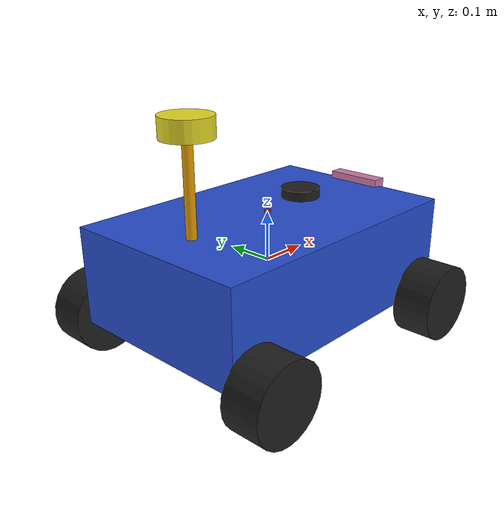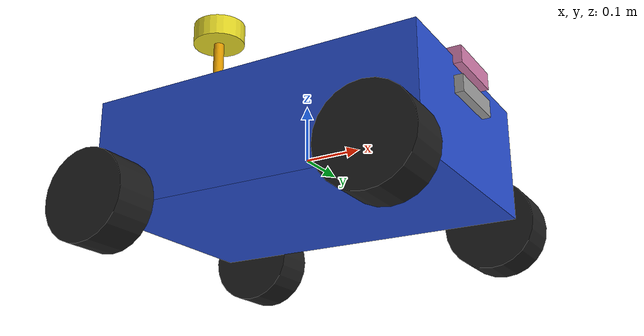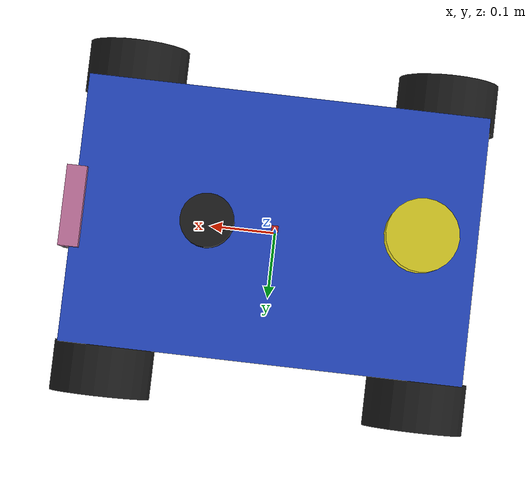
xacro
<?xml version = "1.0"?>
<robot xmlns:xacro="http://www.ros.org/wiki.xacro" name = "robot" >

<xacro:include filename="lidar.xacro"/>
<xacro:include filename="stereo.xacro"/>
<xacro:include filename="gps.xacro"/>
<xacro:include filename="imu.xacro"/>
<xacro:include filename="cam.xacro"/>

    <link name = "base_link">
        <visual>
            <geometry>
                <box size = "0.6 0.4 0.2" />
            </geometry>
            <origin xyz = "0 0 0" rpy = "0 0 0" />
        </visual>

        <collision>
            <geometry>
                <box size = "0.6 0.4 0.2" />
            </geometry>
            <origin xyz = "0 0 0" rpy = "0 0 0" />
        </collision>
      <inertial>
        <mass value="20"/>
        <origin xyz="0 0 0" rpy="0 0 0"/>
        <inertia ixx="0.333" ixy="0" ixz="0" iyy="0.666" iyz="0" izz="0.866"/>
      </inertial>
    </link>

    <link name="left_wheel_back_link">
        <visual>
            <origin xyz="0 0 0" rpy="1.5708 0 0"/>
            <geometry>
                <cylinder radius="0.08" length="0.08"/>
            </geometry>
        </visual>
        <collision>
            <origin xyz="0 0 0" rpy="1.5708 0 0"/>
            <geometry>
                <cylinder radius="0.08" length="0.08"/>
            </geometry>
        </collision>
        <inertial>
            <mass value="2"/>
            <inertia ixx="0.0042" ixy="0" ixz="0" iyy="0.0042" iyz="0" izz="0.0064"/>
        </inertial>
    </link>

    <joint name="base_left_wheel_back_joint" type="continuous">
        <parent link="base_link" />
        <child link="left_wheel_back_link" />
        <origin xyz="0.25 0.24 -0.1" rpy="0 0 0"/>
        <axis xyz="0 1 0" />
    </joint>

    <link name="right_wheel_back_link">
        <visual>
            <origin xyz="0 0 0" rpy="1.5708 0 0"/>
            <geometry>
                <cylinder radius="0.08" length="0.08"/>
            </geometry>
        </visual>
        <collision>
            <origin xyz="0 0 0" rpy="1.5708 0 0"/>
            <geometry>
                <cylinder radius="0.08" length="0.08"/>
            </geometry>
        </collision>
        <inertial>
            <mass value="2"/>
            <inertia ixx="0.0042" ixy="0" ixz="0" iyy="0.0042" iyz="0" izz="0.0064"/>
        </inertial>
    </link>

    <joint name="base_right_wheel_back_joint" type="continuous">
        <parent link="base_link" />
        <child link="right_wheel_back_link" />
        <origin xyz="-0.25 -0.24 -0.1" rpy="0 0 0"/>
        <axis xyz="0 1 0" />
    </joint>

     <link name="left_wheel_front_link">
        <visual>
            <origin xyz="0 0 0" rpy="1.5708 0 0"/>
            <geometry>
                <cylinder radius="0.08" length="0.08"/>
            </geometry>
        </visual>
        <collision>
            <origin xyz="0 0 0" rpy="1.5708 0 0"/>
            <geometry>
                <cylinder radius="0.08" length="0.08"/>
            </geometry>
        </collision>
        <inertial>
            <mass value="2"/>
            <inertia ixx="0.0042" ixy="0" ixz="0" iyy="0.0042" iyz="0" izz="0.0064"/>
        </inertial>
    </link>

    <joint name="base_left_wheel_front_joint" type="continuous">
        <parent link="base_link" />
        <child link="left_wheel_front_link" />
        <origin xyz="-0.25 0.24 -0.1" rpy="0 0 0"/>
        <axis xyz="0 1 0" />
    </joint>

    <link name="right_wheel_front_link">
        <visual>
            <origin xyz="0 0 0" rpy="1.5708 0 0"/>
            <geometry>
                <cylinder radius="0.08" length="0.08"/>
            </geometry>
        </visual>
        <collision>
            <origin xyz="0 0 0" rpy="1.5708 0 0"/>
            <geometry>
                <cylinder radius="0.08" length="0.08"/>
            </geometry>
        </collision>
        <inertial>
            <mass value="2"/>
            <inertia ixx="0.0042" ixy="0" ixz="0" iyy="0.0042" iyz="0" izz="0.0064"/>
        </inertial>
    </link>

    <joint name="base_right_wheel_front_joint" type="continuous">
        <parent link="base_link" />
        <child link="right_wheel_front_link" />
        <origin xyz="0.25 -0.24 -0.1" rpy="0 0 0"/>
        <axis xyz="0 1 0" />
    </joint>

     <gazebo>
        <plugin name='diff_drive' filename='libgazebo_ros_diff_drive.so'>
    <num_wheel_pairs>2</num_wheel_pairs>

    <!-- wheels -->
    <left_joint>base_left_wheel_front_joint</left_joint>
    <right_joint>base_right_wheel_front_joint</right_joint>
    <left_joint>base_left_wheel_back_joint</left_joint>
    <right_joint>base_right_wheel_back_joint</right_joint>

    <!-- kinematics -->
    <wheel_separation>0.48</wheel_separation>
    <wheel_diameter>0.16</wheel_diameter>

    <!-- limits -->
    <max_wheel_torque>10</max_wheel_torque>
    <max_wheel_acceleration>1.0</max_wheel_acceleration>

    <!-- output -->
    <publish_odom>true</publish_odom>
    <publish_odom_tf>true</publish_odom_tf>
    <publish_wheel_tf>true</publish_wheel_tf>

    <odometry_frame>odom</odometry_frame>
    <robot_base_frame>base_link</robot_base_frame>
    <update_rate>60.0</update_rate>
</plugin>

    </gazebo>

    <gazebo>
        <plugin name="gazebo_ros_joint_state_publisher" filename="libgazebo_ros_joint_state_publisher.so">
            <update_rate>60</update_rate>
            <joint_name>base_left_wheel_front_joint</joint_name>
            <joint_name>base_left_wheel_back_joint</joint_name>
            <joint_name>base_right_wheel_front_joint</joint_name>
            <joint_name>base_right_wheel_back_joint</joint_name>

        </plugin>
    </gazebo>
       <gazebo reference="base_link">
      <material>Gazebo/Blue</material>
    </gazebo>
    <gazebo reference="left_wheel_front_link">
      <mu1>0.1</mu1>
      <mu2>0.1</mu2>
      <material>Gazebo/Black</material>
    </gazebo>
    <gazebo reference="right_wheel_back_link">
      <mu1>0.1</mu1>
      <mu2>0.1</mu2>
      <material>Gazebo/Black</material>
    </gazebo>
    <gazebo reference="left_wheel_back_link">
      <mu1>0.1</mu1>
      <mu2>0.1</mu2>
      <material>Gazebo/Black</material>
    </gazebo>
    <gazebo reference="right_wheel_front_link">
      <mu1>0.1</mu1>
      <mu2>0.1</mu2>
      <material>Gazebo/Black</material>
    </gazebo>
    <gazebo reference="laser_frame">
      <material>Gazebo/Yellow</material>
    </gazebo>
    <gazebo reference="stereo_link">
      <material>Gazebo/Grey</material>
    </gazebo>
    <gazebo reference="imu_link">
      <material>Gazebo/Red</material>
    </gazebo>
    <gazebo reference="laser_stand">
      <material>Gazebo/Grey</material>
    </gazebo>
    <gazebo reference="gps_link">
      <material>Gazebo/Black</material>
    </gazebo>

</robot>

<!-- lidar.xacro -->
<robot xmlns:xacro="http://www.ros.org/wiki/xacro" name="robot">

  <!-- Joint connecting the base_link to the lidar_stand (elevated) -->
  <joint name="stand_joint" type="fixed">
    <parent link="base_link"/>
    <child link="lidar_stand"/>
    <origin xyz="-0.2 0 0.2" rpy="0 0 0"/>
  </joint>

  <!-- Lidar stand link -->
  <link name="lidar_stand">
    <visual>
      <geometry><cylinder radius="0.01" length="0.2"/></geometry>
    </visual>
    <collision>
      <geometry><cylinder radius="0.01" length="0.2"/></geometry>
    </collision>
    <inertial>
      <mass value="0.1"/>
      <inertia ixx="0.0001" ixy="0" ixz="0" iyy="0.0001" iyz="0" izz="0.0001"/>
    </inertial>
  </link>

  <!-- Joint connecting the lidar_stand to the laser_frame -->
  <joint name="laser_joint" type="fixed">
    <parent link="lidar_stand"/>
    <child link="laser_frame"/>
    <origin xyz="0 0 0.1" rpy="0 0 0"/>
  </joint>

  <!-- Laser frame link -->
  <link name="laser_frame">
      <visual>
        <geometry>
          <cylinder radius="0.05" length="0.04"/>
        </geometry>
      </visual>
      <collision>
        <geometry>
          <cylinder radius="0.05" length="0.04"/>
        </geometry>
      </collision>
      <inertial>
        <mass value="0.1"/>
        <inertia ixx="0.00007" ixy="0" ixz="0" iyy="0.00007" iyz="0" izz="0.000125"/>
      </inertial>
    </link>

  <!-- Gazebo-specific plugin for the laser sensor -->
  <gazebo reference="laser_frame">
    <sensor name="lidar" type="ray">
      <pose>0.215 0 0.215 0 0 0</pose>
      <always_on>true</always_on>
      <visualize>false</visualize>
      <update_rate>60</update_rate>
      <ray>
        <scan>
          <horizontal>
            <samples>360</samples>
            <resolution>1.00000</resolution>
            <min_angle>0.000000</min_angle>
            <max_angle>6.280000</max_angle>
            <visualize>false</visualize>
          </horizontal>
        </scan>
        <range>
          <min>0.1</min>
          <max>20.0</max>
          <resolution>0.015000</resolution>
        </range>
        <noise>
          <type>gaussian</type>
          <mean>0.0</mean>
          <stddev>0.01</stddev>
        </noise>
      </ray>
      <plugin name="scan" filename="libgazebo_ros_ray_sensor.so">
        <ros>
          <remapping>~/out:=scan</remapping>
        </ros>
        <output_type>sensor_msgs/LaserScan</output_type>
        <frame_name>laser_frame</frame_name>
      </plugin>
    </sensor>
  </gazebo>

</robot>

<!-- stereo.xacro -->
<robot xmlns:xacro="http://www.ros.org/wiki/xacro">

  <joint name="stereo" type="fixed">
    <parent link="base_link"/>
    <child link="stereo_link"/>
      <origin xyz="0.3 0 0.05" rpy="0 0 0"/>
    </joint>

  <link name="stereo_link">
      <visual>
        <geometry>
          <box size="0.03 0.12 0.03"/>
        </geometry>
      </visual>
      <collision>
        <geometry>
          <box size="0.03 0.12 0.03"/>
        </geometry>
      </collision>
      <inertial>
        <mass value="0.1"/>
        <inertia ixx="0.0001" ixy="0" ixz="0" iyy="0.0001" iyz="0" izz="0.0001"/>
      </inertial>
    </link>
  <!-- Optical frame added here -->
  <joint name="stereo_optical_joint" type="fixed">
    <parent link="stereo_link"/>
    <child link="stereo_link_optical"/>
    <origin xyz="0 0 0" rpy="-1.5708 0 -1.5708"/>
  </joint>

  <link name="stereo_link_optical"/>

  <gazebo reference="stereo_link">
    <sensor name="camera" type="depth">
      <always_on>true</always_on>
      <update_rate>60</update_rate>
      <visualize>true</visualize>
      <pose>0 0 0 0.0 0.0 0.0</pose>
      <camera name="realsense_depth_camera">
        <horizontal_fov>1.3962634</horizontal_fov> <!-- Approx. 80 degrees -->
        <image>
          <width>640</width>
          <height>480</height>
          <format>R8G8B8</format>
        </image>
        <clip>
          <near>0.01</near>
          <far>20.0</far>
        </clip>
        <depth_noise>
          <mean>0.0</mean>
          <stddev>0.005</stddev>
        </depth_noise>
      </camera>
      <plugin name="intel_realsense_d430_depth_driver" filename="libgazebo_ros_camera.so">
        <ros>
          <namespace>d430</namespace>
          <remapping>camera/image_raw:=color/image_raw</remapping>
          <remapping>camera/depth/image_raw:=depth/image_rect_raw</remapping>
          <remapping>camera/camera_info:=camera_info</remapping>
          <remapping>camera/depth/camera_info:=depth/camera_info</remapping>
          <remapping>camera/points:=depth/points</remapping>
        </ros>
        <camera_name>camera</camera_name>
        <frame_name>stereo_link_optical</frame_name>
        <hack_baseline>0.07</hack_baseline>
        <min_depth>0.01</min_depth>
        <max_depth>20.0</max_depth>
      </plugin>
    </sensor>
  </gazebo>

</robot>

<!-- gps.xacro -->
<robot xmlns:xacro="http://www.ros.org/wiki/xacro" name="robot">

  <joint name="gps_joint" type="fixed">
    <parent link="base_link"/>
    <child link="gps_link"/>
      <origin xyz="0.1 0 0.12" rpy="0 0 0"/>
    </joint>

  <link name="gps_link">
    <visual>
      <geometry><cylinder radius="0.04" length="0.02"/></geometry>
    </visual>
    <collision>
      <geometry><cylinder radius="0.04" length="0.02"/></geometry>
    </collision>
    <inertial>
      <mass value="0.1"/>
      <inertia ixx="0.0001" ixy="0" ixz="0" iyy="0.0001" iyz="0" izz="0.0001"/>
    </inertial>
  </link>

  <gazebo reference="gps_link">
    <sensor name="gps_sensor" type="gps">
        <always_on>true</always_on>
        <update_rate>10.0</update_rate>
        <plugin name="gps_controller" filename="libgazebo_ros_gps_sensor.so">
            <ros>
                <remapping>gps_controller/out:=gps</remapping>
            </ros>
            <frame_name>gps_joint</frame_name>
            <horizontal_position_std_dev>0.0</horizontal_position_std_dev>
            <vertical_position_std_dev>0.0</vertical_position_std_dev>

        </plugin>
    </sensor>
  </gazebo>

  </robot>

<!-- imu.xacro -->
<robot xmlns:xacro="http://www.ros.org/wiki/xacro">

  <!-- Joint connecting the base_link to the imu_link -->
  <joint name="imu_joint" type="fixed">
    <parent link="base_link"/>
    <child link="imu_link"/>
    <origin xyz="0 0 0.1" rpy="0 0 0"/>
  </joint>

  <!-- IMU Link -->
  <link name="imu_link">
    <visual>
      <geometry><box size="0.01 0.01 0.01"/></geometry>
    </visual>
    <collision>
      <geometry><box size="0.01 0.01 0.01"/></geometry>
    </collision>
    <inertial>
      <mass value="0.1"/>
      <inertia ixx="0.0001" ixy="0" ixz="0" iyy="0.0001" iyz="0" izz="0.0001"/>
    </inertial>
  </link>

  <!-- Gazebo-specific plugin for the IMU sensor -->
  <gazebo reference="imu_link">
    <sensor name="imu_sensor" type="imu">
      <always_on>true</always_on>
      <update_rate>100.0</update_rate>
      <plugin name="imu_controller" filename="libgazebo_ros_imu_sensor.so">
        <ros>
          <remapping>imu_controller/out:=imu</remapping>
        </ros>
        <frame_name>imu_link</frame_name>
      </plugin>
    </sensor>
  </gazebo>

</robot>

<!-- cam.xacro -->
<robot xmlns:xacro="http://www.ros.org/wiki/xacro" >

    <joint name="camera_joint" type="fixed">
        <parent link="base_link"/>
        <child link="camera_link"/>
        <origin xyz="0.3 0 0.1" rpy="0 0 0"/>
    </joint>

    <link name="camera_link">
      <visual>
        <geometry>
          <box size="0.03 0.12 0.03"/>
        </geometry>
      </visual>
      <collision>
        <geometry>
          <box size="0.03 0.12 0.03"/>
        </geometry>
      </collision>
      <inertial>
        <mass value="0.1"/>
        <inertia ixx="0.0001" ixy="0" ixz="0" iyy="0.0001" iyz="0" izz="0.0001"/>
      </inertial>

         <gazebo reference="camera_link">
        <sensor type="camera" name="my_camera">
            <update_rate>20</update_rate>
            <visualize>true</visualize>
            <camera name="cam">
                <horizontal_fov>1.3962634</horizontal_fov>
                <image>
                    <width>640</width>
                    <height>480</height>
                    <format>R8B8G8</format>
                </image>
                <clip>
                    <near>0.02</near>
                    <far>1000</far>
                </clip>
                <noise>
                    <type>gaussian</type>
                    <mean>0.0</mean>
                    <stddev>0.007</stddev>
                </noise>
            </camera>
            <plugin name="camera_controller" filename="libgazebo_ros_camera.so">
                <frame_name>camera_link</frame_name>
                <min_depth>0.1</min_depth>
                <max_depth>1000</max_depth>
            </plugin>
        </sensor>
    </gazebo>
    </link>
</robot>
